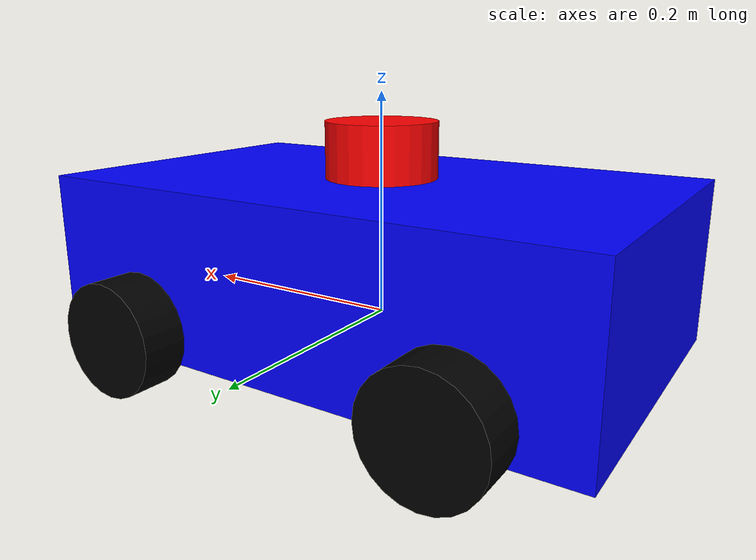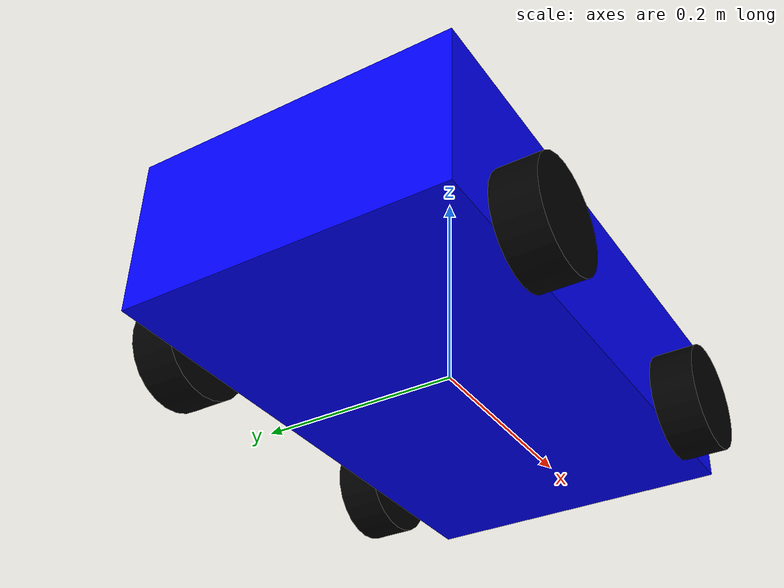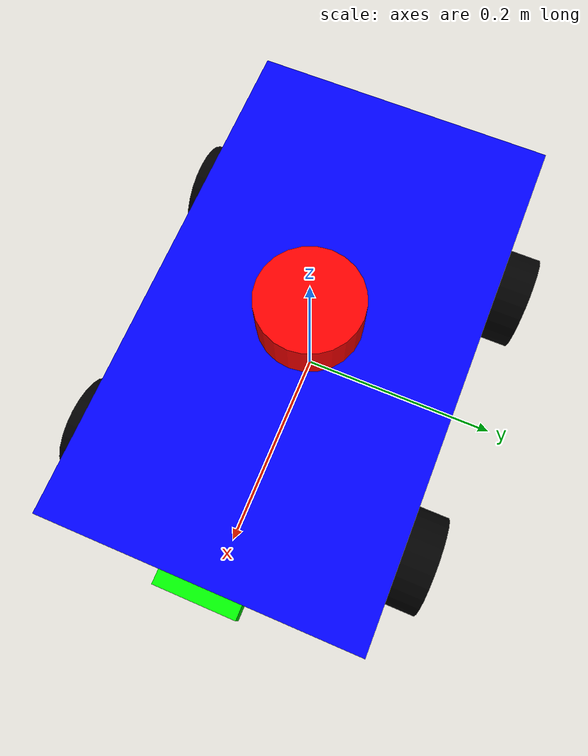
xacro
<?xml version="1.0"?>
<robot xmlns:xacro="http://www.ros.org/wiki/xacro" name="olive_bot">

  <!-- Define properties for easy modification -->
  <xacro:property name="chassis_length" value="0.5"/>
  <xacro:property name="chassis_width" value="0.3"/>
  <xacro:property name="chassis_height" value="0.15"/>
  <xacro:property name="wheel_radius" value="0.05"/>
  <xacro:property name="wheel_width" value="0.04"/>
  <xacro:property name="wheel_offset_x" value="0.15"/>
  <xacro:property name="wheel_offset_y" value="0.17"/>
  <xacro:property name="wheel_offset_z" value="-0.05"/>

  <!-- Base footprint (for navigation stack compatibility) -->
  <link name="base_footprint"/>

  <joint name="base_joint" type="fixed">
    <parent link="base_footprint"/>
    <child link="base_link"/>
    <origin xyz="0.0 0.0 ${wheel_radius}" rpy="0 0 0"/>
  </joint>

  <!-- Base Link (Chassis) -->
  <link name="base_link">
    <visual>
      <origin xyz="0 0 0" rpy="0 0 0"/>
      <geometry>
        <box size="${chassis_length} ${chassis_width} ${chassis_height}"/>
      </geometry>
      <material name="blue">
        <color rgba="0.0 0.0 1.0 1.0"/>
      </material>
    </visual>
    <collision>
      <origin xyz="0 0 0" rpy="0 0 0"/>
      <geometry>
        <box size="${chassis_length} ${chassis_width} ${chassis_height}"/>
      </geometry>
    </collision>
    <inertial>
      <mass value="15.0"/>
      <origin xyz="0 0 0" rpy="0 0 0"/>
      <inertia ixx="0.1125" ixy="0.0" ixz="0.0"
               iyy="0.3375" iyz="0.0"
               izz="0.4125"/>
    </inertial>
  </link>

  <!-- Wheel Macro -->
  <xacro:macro name="wheel" params="prefix suffix pos_x pos_y">
    <link name="${prefix}_${suffix}_wheel">
      <visual>
        <origin xyz="0 0 0" rpy="${pi/2} 0 0"/>
        <geometry>
          <cylinder radius="${wheel_radius}" length="${wheel_width}"/>
        </geometry>
        <material name="black">
          <color rgba="0.0 0.0 0.0 1.0"/>
        </material>
      </visual>
      <collision>
        <origin xyz="0 0 0" rpy="${pi/2} 0 0"/>
        <geometry>
          <cylinder radius="${wheel_radius}" length="${wheel_width}"/>
        </geometry>
      </collision>
      <inertial>
        <mass value="0.5"/>
        <origin xyz="0 0 0" rpy="${pi/2} 0 0"/>
        <inertia ixx="0.000833" ixy="0.0" ixz="0.0"
                 iyy="0.000833" iyz="0.0"
                 izz="0.00125"/>
      </inertial>
    </link>

    <joint name="${prefix}_${suffix}_wheel_joint" type="continuous">
      <parent link="base_link"/>
      <child link="${prefix}_${suffix}_wheel"/>
      <origin xyz="${pos_x} ${pos_y} ${wheel_offset_z}" rpy="0 0 0"/>
      <axis xyz="0 1 0"/>
    </joint>
  </xacro:macro>

  <!-- Instantiate the four wheels -->
  <xacro:wheel prefix="front" suffix="left" pos_x="${wheel_offset_x}" pos_y="${wheel_offset_y}"/>
  <xacro:wheel prefix="front" suffix="right" pos_x="${wheel_offset_x}" pos_y="${-wheel_offset_y}"/>
  <xacro:wheel prefix="rear" suffix="left" pos_x="${-wheel_offset_x}" pos_y="${wheel_offset_y}"/>
  <xacro:wheel prefix="rear" suffix="right" pos_x="${-wheel_offset_x}" pos_y="${-wheel_offset_y}"/>

  <!-- IMU Sensor Link -->
  <link name="imu_link">
    <inertial>
      <mass value="0.01"/>
      <origin xyz="0 0 0" rpy="0 0 0"/>
      <inertia ixx="0.00001" ixy="0.0" ixz="0.0"
               iyy="0.00001" iyz="0.0"
               izz="0.00001"/>
    </inertial>
  </link>

  <joint name="imu_joint" type="fixed">
    <parent link="base_link"/>
    <child link="imu_link"/>
    <origin xyz="0 0 0" rpy="0 0 0"/>
  </joint>

  <!-- LiDAR Sensor Link -->
  <link name="lidar_link">
    <visual>
      <origin xyz="0 0 0" rpy="0 0 0"/>
      <geometry>
        <cylinder radius="0.05" length="0.05"/>
      </geometry>
      <material name="red">
        <color rgba="1.0 0.0 0.0 1.0"/>
      </material>
    </visual>
    <collision>
      <origin xyz="0 0 0" rpy="0 0 0"/>
      <geometry>
        <cylinder radius="0.05" length="0.05"/>
      </geometry>
    </collision>
    <inertial>
      <mass value="0.1"/>
      <origin xyz="0 0 0" rpy="0 0 0"/>
      <inertia ixx="0.0001" ixy="0.0" ixz="0.0"
               iyy="0.0001" iyz="0.0"
               izz="0.0001"/>
    </inertial>
  </link>

  <joint name="lidar_joint" type="fixed">
    <parent link="base_link"/>
    <child link="lidar_link"/>
    <origin xyz="0 0 ${chassis_height/2 + 0.025}" rpy="0 0 0"/>
  </joint>

  <!-- Camera Link -->
  <link name="camera_link">
    <visual>
      <origin xyz="0 0 0" rpy="0 0 0"/>
      <geometry>
        <box size="0.03 0.08 0.03"/>
      </geometry>
      <material name="green">
        <color rgba="0.0 1.0 0.0 1.0"/>
      </material>
    </visual>
    <collision>
      <origin xyz="0 0 0" rpy="0 0 0"/>
      <geometry>
        <box size="0.03 0.08 0.03"/>
      </geometry>
    </collision>
    <inertial>
      <mass value="0.05"/>
      <origin xyz="0 0 0" rpy="0 0 0"/>
      <inertia ixx="0.00001" ixy="0.0" ixz="0.0"
               iyy="0.00001" iyz="0.0"
               izz="0.00001"/>
    </inertial>
  </link>

  <joint name="camera_joint" type="fixed">
    <parent link="base_link"/>
    <child link="camera_link"/>
    <origin xyz="${chassis_length/2} 0 0.02" rpy="0 0 0"/>
  </joint>

  <!-- Camera Optical Frame (required for ROS camera convention) -->
  <link name="camera_optical_link"/>

  <joint name="camera_optical_joint" type="fixed">
    <parent link="camera_link"/>
    <child link="camera_optical_link"/>
    <origin xyz="0 0 0" rpy="${-pi/2} 0 ${-pi/2}"/>
  </joint>

  <!-- ===================== GAZEBO (IGNITION) PLUGINS ===================== -->

  <!-- Gazebo properties for colors -->
  <gazebo reference="base_link">
    <material>
      <ambient>0.0 0.0 1.0 1.0</ambient>
      <diffuse>0.0 0.0 1.0 1.0</diffuse>
      <specular>0.1 0.1 0.1 1.0</specular>
    </material>
  </gazebo>

  <gazebo reference="front_left_wheel">
    <material>
      <ambient>0.0 0.0 0.0 1.0</ambient>
      <diffuse>0.0 0.0 0.0 1.0</diffuse>
    </material>
    <mu1>1.0</mu1>
    <mu2>1.0</mu2>
  </gazebo>

  <gazebo reference="front_right_wheel">
    <material>
      <ambient>0.0 0.0 0.0 1.0</ambient>
      <diffuse>0.0 0.0 0.0 1.0</diffuse>
    </material>
    <mu1>1.0</mu1>
    <mu2>1.0</mu2>
  </gazebo>

  <gazebo reference="rear_left_wheel">
    <material>
      <ambient>0.0 0.0 0.0 1.0</ambient>
      <diffuse>0.0 0.0 0.0 1.0</diffuse>
    </material>
    <mu1>1.0</mu1>
    <mu2>1.0</mu2>
  </gazebo>

  <gazebo reference="rear_right_wheel">
    <material>
      <ambient>0.0 0.0 0.0 1.0</ambient>
      <diffuse>0.0 0.0 0.0 1.0</diffuse>
    </material>
    <mu1>1.0</mu1>
    <mu2>1.0</mu2>
  </gazebo>

  <gazebo reference="lidar_link">
    <material>
      <ambient>1.0 0.0 0.0 1.0</ambient>
      <diffuse>1.0 0.0 0.0 1.0</diffuse>
    </material>
  </gazebo>

  <gazebo reference="camera_link">
    <material>
      <ambient>0.0 1.0 0.0 1.0</ambient>
      <diffuse>0.0 1.0 0.0 1.0</diffuse>
    </material>
  </gazebo>

  <!-- Differential Drive Plugin (Ignition Gazebo) -->
  <gazebo>
    <plugin filename="ignition-gazebo-diff-drive-system" name="ignition::gazebo::systems::DiffDrive">
      <left_joint>front_left_wheel_joint</left_joint>
      <left_joint>rear_left_wheel_joint</left_joint>
      <right_joint>front_right_wheel_joint</right_joint>
      <right_joint>rear_right_wheel_joint</right_joint>
      <wheel_separation>${2*wheel_offset_y}</wheel_separation>
      <wheel_radius>${wheel_radius}</wheel_radius>
      <odom_publish_frequency>50</odom_publish_frequency>
      <max_linear_acceleration>1.0</max_linear_acceleration>
      <min_linear_acceleration>-1.0</min_linear_acceleration>
      <max_angular_acceleration>2.0</max_angular_acceleration>
      <min_angular_acceleration>-2.0</min_angular_acceleration>
      <max_linear_velocity>0.5</max_linear_velocity>
      <min_linear_velocity>-0.5</min_linear_velocity>
      <max_angular_velocity>1.0</max_angular_velocity>
      <min_angular_velocity>-1.0</min_angular_velocity>
      <topic>cmd_vel</topic>
      <odom_topic>odom</odom_topic>
      <tf_topic>/tf</tf_topic>
      <frame_id>odom</frame_id>
      <child_frame_id>base_footprint</child_frame_id>
    </plugin>

    <!-- Joint State Publisher Plugin -->
    <plugin filename="ignition-gazebo-joint-state-publisher-system" name="ignition::gazebo::systems::JointStatePublisher">
      <topic>joint_states</topic>
      <joint_name>front_left_wheel_joint</joint_name>
      <joint_name>front_right_wheel_joint</joint_name>
      <joint_name>rear_left_wheel_joint</joint_name>
      <joint_name>rear_right_wheel_joint</joint_name>
    </plugin>

    <!-- IMU Plugin -->
    <plugin filename="ignition-gazebo-imu-system" name="ignition::gazebo::systems::Imu">
    </plugin>
  </gazebo>

  <!-- ............................. ground truth .................................... -->
  <!-- Second method to get odometry-->
  <gazebo>
    <plugin filename="libignition-gazebo6-odometry-publisher-system" name="ignition::gazebo::systems::OdometryPublisher">
      <odom_frame>odom</odom_frame>
      <robot_base_frame>base_link</robot_base_frame>
      <odom_topic>/ground_truth</odom_topic>
      <tf_topic>/tf</tf_topic>
      <dimensions>3</dimensions>
      <odom_publish_frequency>30</odom_publish_frequency>
    </plugin>
  </gazebo>

  <!-- IMU Sensor Plugin (Ignition Gazebo) -->
  <gazebo reference="imu_link">
    <sensor name="imu_sensor" type="imu">
      <always_on>true</always_on>
      <update_rate>100</update_rate>
      <visualize>true</visualize>
      <topic>imu/data</topic>
      <enable_metrics>false</enable_metrics>
      <imu>
        <angular_velocity>
          <x>
            <noise type="gaussian">
              <mean>0.0</mean>
              <stddev>2e-4</stddev>
            </noise>
          </x>
          <y>
            <noise type="gaussian">
              <mean>0.0</mean>
              <stddev>2e-4</stddev>
            </noise>
          </y>
          <z>
            <noise type="gaussian">
              <mean>0.0</mean>
              <stddev>2e-4</stddev>
            </noise>
          </z>
        </angular_velocity>
        <linear_acceleration>
          <x>
            <noise type="gaussian">
              <mean>0.0</mean>
              <stddev>1.7e-2</stddev>
            </noise>
          </x>
          <y>
            <noise type="gaussian">
              <mean>0.0</mean>
              <stddev>1.7e-2</stddev>
            </noise>
          </y>
          <z>
            <noise type="gaussian">
              <mean>0.0</mean>
              <stddev>1.7e-2</stddev>
            </noise>
          </z>
        </linear_acceleration>
      </imu>
    </sensor>
  </gazebo>

  <!-- 3D LiDAR Sensor Plugin (Ignition Gazebo GPU Ray) -->
  <gazebo reference="lidar_link">
    <sensor name="lidar_sensor" type="gpu_lidar">
      <always_on>true</always_on>
      <update_rate>30</update_rate>
      <visualize>true</visualize>
      <topic>lidar/points</topic>
      <frame_id>lidar_link</frame_id>
      <ignition_frame_id>lidar_link</ignition_frame_id>
      <enable_metrics>false</enable_metrics>
      <lidar>
        <scan>
          <horizontal>
            <samples>360</samples>
            <resolution>1</resolution>
            <min_angle>-3.141592653589793</min_angle>
            <max_angle>3.141592653589793</max_angle>
          </horizontal>
          <vertical>
            <samples>16</samples>
            <resolution>1</resolution>
            <min_angle>-0.261799</min_angle>
            <max_angle>0.261799</max_angle>
          </vertical>
        </scan>
        <range>
          <min>0.3</min>
          <max>10.0</max>
          <resolution>0.01</resolution>
        </range>
        <noise>
          <type>gaussian</type>
          <mean>0.0</mean>
          <stddev>0.01</stddev>
        </noise>
      </lidar>
    </sensor>
  </gazebo>

  <!-- RGB Camera Sensor Plugin (Ignition Gazebo) -->
  <gazebo reference="camera_link">
    <sensor name="camera_sensor" type="camera">
      <always_on>true</always_on>
      <update_rate>30</update_rate>
      <visualize>true</visualize>
      <topic>camera/image_raw</topic>
      <frame_id>camera_optical_link</frame_id>
      <ignition_frame_id>camera_optical_link</ignition_frame_id>
      <enable_metrics>false</enable_metrics>
      <camera>
        <horizontal_fov>1.3962634</horizontal_fov>
        <image>
          <width>640</width>
          <height>480</height>
          <format>R8G8B8</format>
        </image>
        <clip>
          <near>0.02</near>
          <far>300</far>
        </clip>
        <noise>
          <type>gaussian</type>
          <mean>0.0</mean>
          <stddev>0.007</stddev>
        </noise>
        <distortion>
          <k1>0.0</k1>
          <k2>0.0</k2>
          <k3>0.0</k3>
          <p1>0.0</p1>
          <p2>0.0</p2>
          <center>0.5 0.5</center>
        </distortion>
        <lens>
          <type>stereographic</type>
          <scale_to_hfov>true</scale_to_hfov>
        </lens>
      </camera>
    </sensor>
  </gazebo>

</robot>
